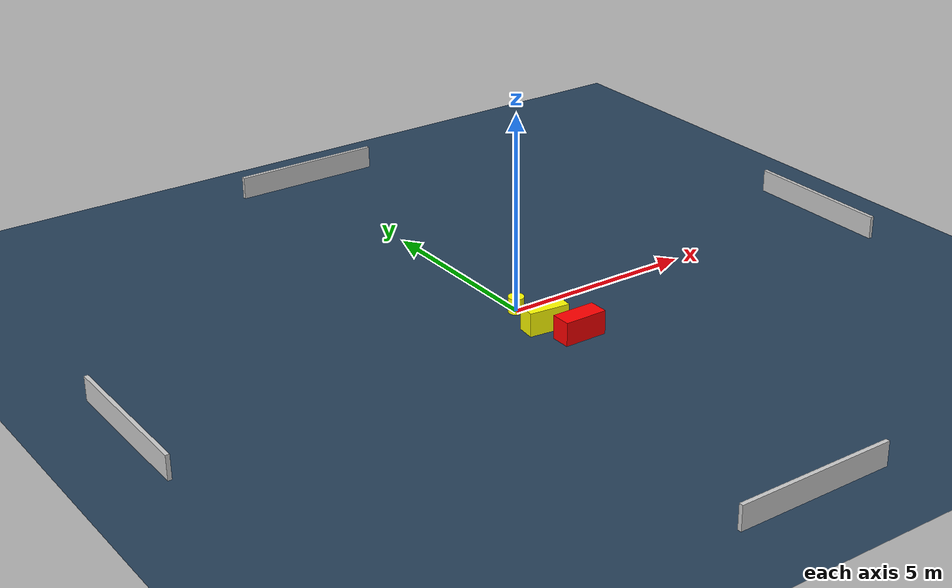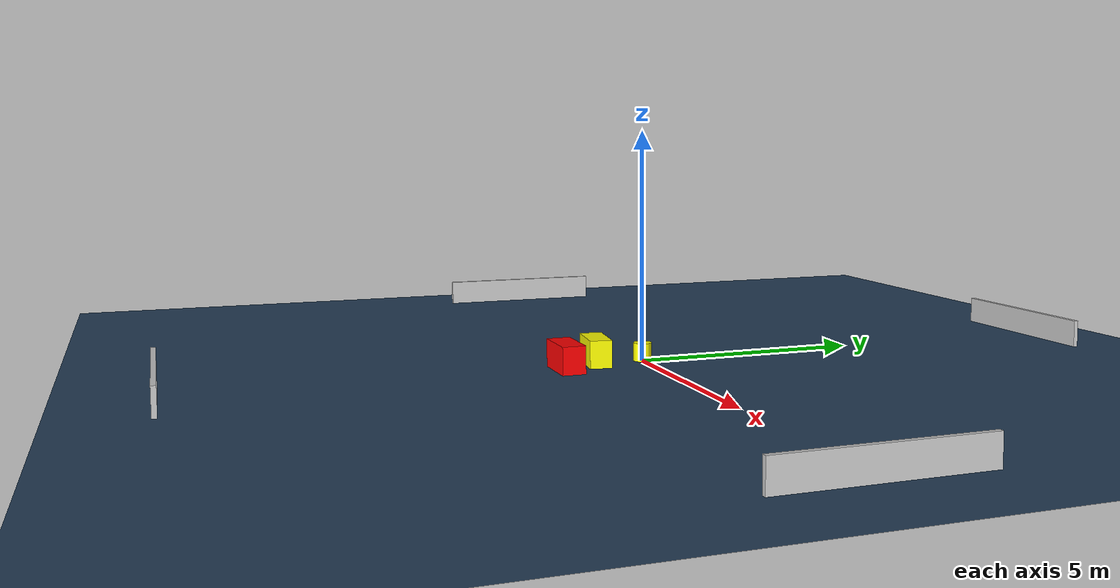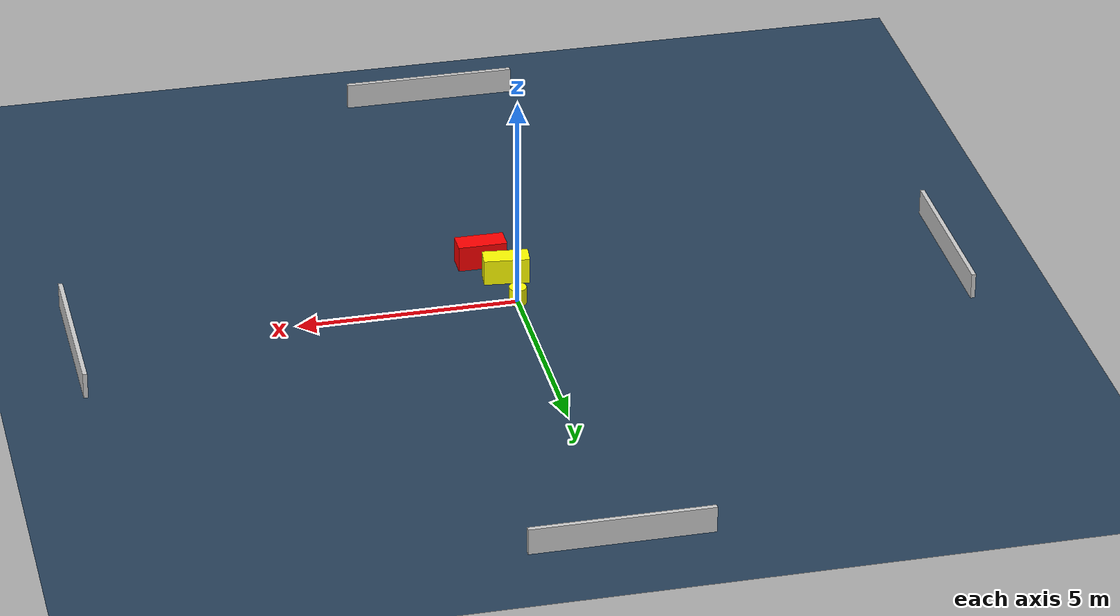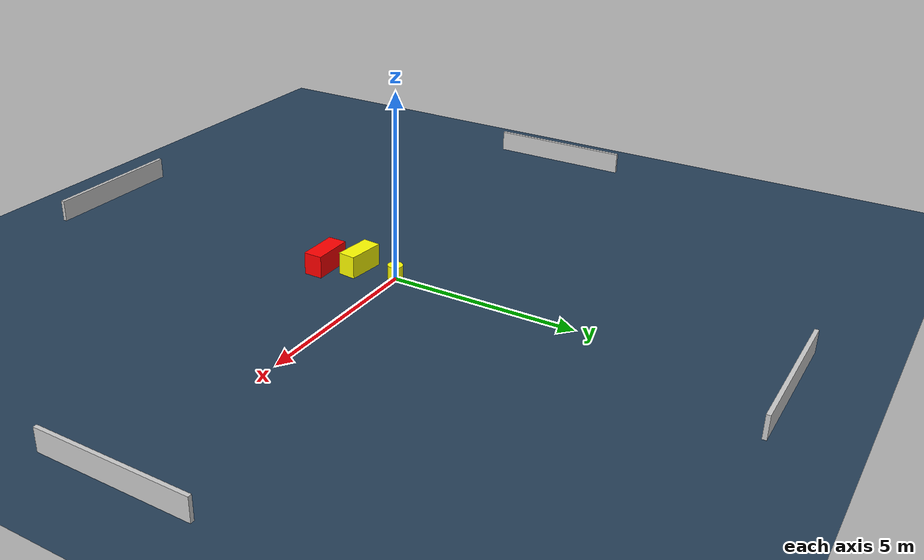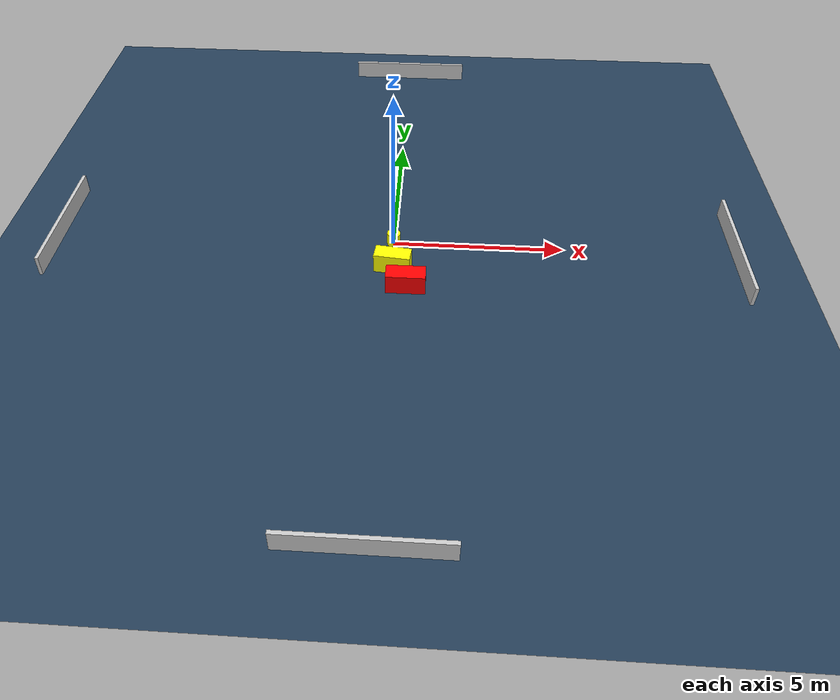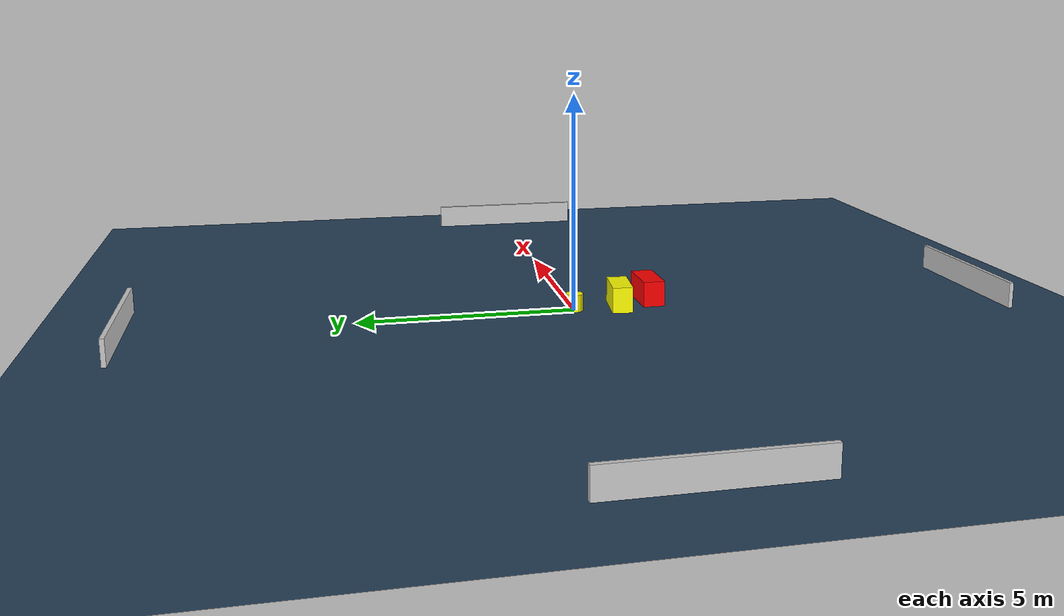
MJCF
<?xml version="1.0" ?>
<mujoco model="generated_environment">
  <option timestep="0.01" integrator="RK4" cone="elliptic"/>
  <default>
    <geom density="1"/>
  </default>
  <asset>
    <texture builtin="gradient" height="3072" name="skybox" rgb1="0.3 0.5 0.7" rgb2="0 0 0" type="skybox" width="512"/>
    <texture builtin="checker" height="300" name="groundplane" rgb1="0.2 0.3 0.4" rgb2="0.1 0.2 0.3" type="2d" width="300"/>
    <material name="groundplane" reflectance="0.2" texrepeat="5 5" texture="groundplane"/>
  </asset>
  <worldbody>
    <light dir="0 0 -1" directional="true" pos="0 0 1.5"/>
    <geom condim="3" friction="0.5 0.005 0.001" material="groundplane" name="floor" pos="0 0 0" size="0 0 0.05" type="plane"/>
    <body name="walls">
      <geom name="wall_1" condim="4" pos="-10.0 0.0 0.3" rgba="0.800000011920929 0.800000011920929 0.800000011920929 1.0" size="0.05 2.0 0.3" type="box"/>
      <geom name="wall_2" condim="4" pos="10.0 0.0 0.3" rgba="0.800000011920929 0.800000011920929 0.800000011920929 1.0" size="0.05 2.0 0.3" type="box"/>
      <geom name="wall_3" condim="4" pos="0.0 -10.0 0.3" rgba="0.800000011920929 0.800000011920929 0.800000011920929 1.0" size="2.0 0.05 0.3" type="box"/>
      <geom name="wall_4" condim="4" pos="0.0 10.0 0.3" rgba="0.800000011920929 0.800000011920929 0.800000011920929 1.0" size="2.0 0.05 0.3" type="box"/>
    </body>
    <body name="robot">
      <joint name="joint_x" type="slide" pos="0 0 0" axis="1 0 0"/>
      <joint name="joint_y" type="slide" pos="0 0 0" axis="0 1 0"/>
      <geom name="robot" type="cylinder" pos="0.0 0.0 0.2" size="0.2 0.2 0.0" mass="5.0" friction="1.0 0.005 0.0001" condim="4" rgba="1.0 1.0 0.0 1.0"/>
    </body>
    <body name="obstacle_1_movable">
      <geom name="obstacle_1_movable" condim="4" pos="0.033718213327038345 -1.0928818067000474 0.3" euler="0 0 83.93063178530592" friction="0.0 0.005 0.001" rgba="1.0 1.0 0.0 1.0" size="0.23837435953355596 0.5204402898422344 0.3" type="box" mass="0.1"/>
      <joint type="free"/>
    </body>
    <body name="obstacle_2_static">
      <geom name="obstacle_2_static" condim="4" pos="0.4447919435793607 -1.8898281285812426 0.3" euler="0 0 90.0389408230454" friction="0.0 0.005 0.001" rgba="1.0 0.0 0.0 1.0" size="0.2548393624590162 0.5598403654657553 0.3" type="box"/>
    </body>
  </worldbody>
  <actuator>
    <motor name="actuator_x" joint="joint_x" gear="1" ctrlrange="-1 1"/>
    <motor name="actuator_y" joint="joint_y" gear="1" ctrlrange="-1 1"/>
  </actuator>
</mujoco>
